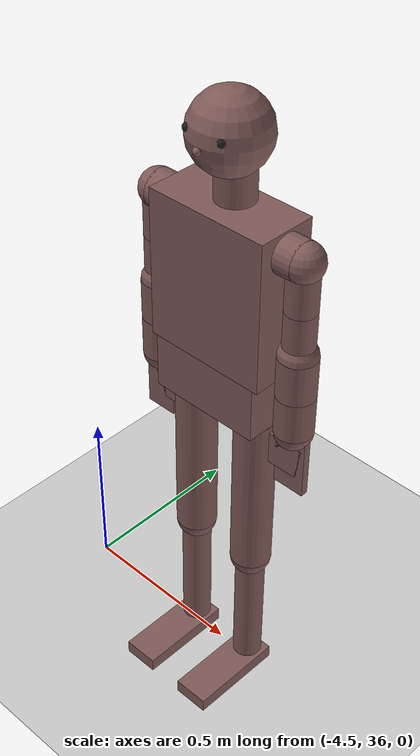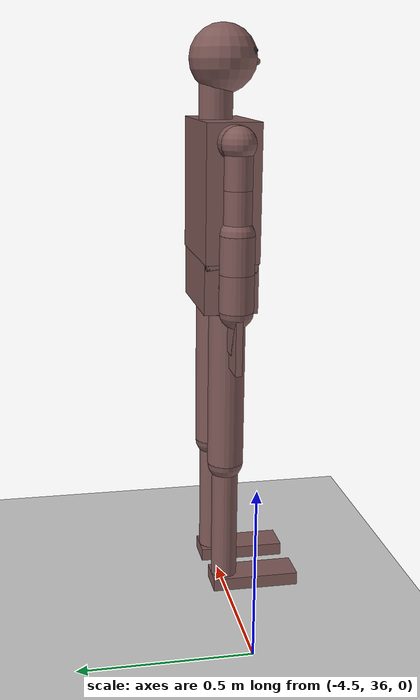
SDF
<sdf version="1.6">
 <world name="default">
  <model name="ground_plane">
   <static>1</static>
   <link name="link">
    <collision name="collision">
     <geometry><plane><normal>0 0 1</normal><size>100 100</size></plane></geometry>
     <surface><friction><ode><mu>100</mu><mu2>50</mu2></ode></friction></surface>
    </collision>
    <visual name="visual">
     <cast_shadows>0</cast_shadows>
     <geometry><plane><normal>0 0 1</normal><size>100 100</size></plane></geometry>
     <material>
      <script><uri>file://media/materials/scripts/gazebo.material</uri><name>Gazebo/Grey</name></script>
     </material>
    </visual>
   </link>
  </model>
  <model name="victim175_0">
   <static>1</static>
   <self_collide>1</self_collide>
   <link name="head">
    <pose>0 0 1.625 0 -0 0</pose>
    <visual name="visual">
     <geometry><sphere><radius>0.1</radius></sphere></geometry>
     <material>
      <emissive>0.5 0.355 0.345 1</emissive>
      <ambient>0.5 0.355 0.345 1</ambient>
      <diffuse>0.5 0.355 0.345 1</diffuse>
      <specular>0 0 0 0</specular>
     </material>
    </visual>
    <collision name="collision"><geometry><sphere><radius>0.1</radius></sphere></geometry></collision>
    <visual name="visual_nose">
     <pose>0 -0.1 -0.01 0 -0 0</pose>
     <geometry><sphere><radius>0.01</radius></sphere></geometry>
     <material>
      <emissive>0.5 0.355 0.345 1</emissive>
      <ambient>0.5 0.355 0.345 1</ambient>
      <diffuse>0.5 0.355 0.345 1</diffuse>
      <specular>0 0 0 0</specular>
     </material>
    </visual>
    <visual name="visual_rEye">
     <pose>-0.05 -0.08 0.02 0 -0 0</pose>
     <geometry><sphere><radius>0.01</radius></sphere></geometry>
     <material>
      <script><uri>file://media/materials/scripts/gazebo.material</uri><name>Gazebo/Black</name></script>
     </material>
    </visual>
    <visual name="visual_lEye">
     <pose>0.05 -0.08 0.02 0 -0 0</pose>
     <geometry><sphere><radius>0.01</radius></sphere></geometry>
     <material>
      <script><uri>file://media/materials/scripts/gazebo.material</uri><name>Gazebo/Black</name></script>
     </material>
    </visual>
    <self_collide>1</self_collide>
   </link>
   <link name="neck">
    <pose>0 0.02 1.49 0 -0 0</pose>
    <visual name="visual">
     <geometry><cylinder><radius>0.05</radius><length>0.15</length></cylinder></geometry>
     <material>
      <emissive>0.5 0.355 0.345 1</emissive>
      <ambient>0.5 0.355 0.345 1</ambient>
      <diffuse>0.5 0.355 0.345 1</diffuse>
      <specular>0 0 0 0</specular>
     </material>
    </visual>
    <collision name="collision">
     <geometry><cylinder><radius>0.05</radius><length>0.15</length></cylinder></geometry>
    </collision>
    <self_collide>1</self_collide>
   </link>
   <joint name="neck_head" type="revolute">
    <pose>0 0.02 -0.075 0 -0 0</pose>
    <child>head</child>
    <parent>neck</parent>
    <axis>
     <xyz>0 0 -1</xyz>
     <limit><lower>-1.7</lower><upper>1.7</upper></limit>
     <dynamics>
      <friction>0.01</friction>
      <spring_reference>0</spring_reference>
      <spring_stiffness>0</spring_stiffness>
     </dynamics>
     <use_parent_model_frame>0</use_parent_model_frame>
    </axis>
   </joint>
   <link name="body">
    <pose>0 0 1.255 0 -0 0</pose>
    <visual name="visual">
     <geometry><box><size>0.34 0.16 0.4</size></box></geometry>
     <material>
      <emissive>0.5 0.355 0.345 1</emissive>
      <ambient>0.5 0.355 0.345 1</ambient>
      <diffuse>0.5 0.355 0.345 1</diffuse>
      <specular>0 0 0 0</specular>
     </material>
    </visual>
    <collision name="collision"><geometry><box><size>0.34 0.16 0.4</size></box></geometry></collision>
    <self_collide>1</self_collide>
   </link>
   <joint name="body_neck" type="revolute">
    <pose>0 0.06 -0.075 0 -0 0</pose>
    <child>neck</child>
    <parent>body</parent>
    <axis>
     <xyz>1 0 0</xyz>
     <limit><lower>-0.2</lower><upper>1</upper></limit>
     <dynamics>
      <friction>0.01</friction>
      <spring_reference>0</spring_reference>
      <spring_stiffness>0</spring_stiffness>
     </dynamics>
     <use_parent_model_frame>0</use_parent_model_frame>
    </axis>
   </joint>
   <link name="waist">
    <pose>0 0 1.005 0 -0 0</pose>
    <visual name="visual">
     <pose>0 0 -0.025 0 -0 0</pose>
     <geometry><box><size>0.31 0.16 0.15</size></box></geometry>
     <material>
      <emissive>0.5 0.355 0.345 1</emissive>
      <ambient>0.5 0.355 0.345 1</ambient>
      <diffuse>0.5 0.355 0.345 1</diffuse>
      <specular>0 0 0 0</specular>
     </material>
    </visual>
    <collision name="collision"><geometry><box><size>0.31 0.16 0.1</size></box></geometry></collision>
    <visual name="visual2">
     <pose>0 0 0.05 3.14159 1.57079 3.14159</pose>
     <geometry><cylinder><radius>0.08</radius><length>0.31</length></cylinder></geometry>
     <material>
      <emissive>0.5 0.355 0.345 1</emissive>
      <ambient>0.5 0.355 0.345 1</ambient>
      <diffuse>0.5 0.355 0.345 1</diffuse>
      <specular>0 0 0 0</specular>
     </material>
    </visual>
    <collision name="collision2">
     <pose>0 0 0.05 3.14159 1.57079 3.14159</pose>
     <geometry><cylinder><radius>0.08</radius><length>0.31</length></cylinder></geometry>
    </collision>
    <self_collide>1</self_collide>
   </link>
   <joint name="body_waist" type="revolute">
    <pose>0 0 0.05 0 -0 0</pose>
    <child>waist</child>
    <parent>body</parent>
    <axis>
     <xyz>-1 0 0</xyz>
     <limit><lower>0</lower><upper>0</upper></limit>
     <dynamics>
      <friction>0.01</friction>
      <spring_reference>0</spring_reference>
      <spring_stiffness>0</spring_stiffness>
     </dynamics>
     <use_parent_model_frame>0</use_parent_model_frame>
    </axis>
   </joint>
   <link name="rHand">
    <pose>-0.22 0 0.84 0 -0 0</pose>
    <visual name="visual">
     <geometry><box><size>0.09 0.02 0.18</size></box></geometry>
     <material>
      <emissive>0.5 0.355 0.345 1</emissive>
      <ambient>0.5 0.355 0.345 1</ambient>
      <diffuse>0.5 0.355 0.345 1</diffuse>
      <specular>0 0 0 0</specular>
     </material>
    </visual>
    <collision name="collision"><geometry><box><size>0.09 0.02 0.18</size></box></geometry></collision>
    <visual name="visual2">
     <pose>0.02 0 0 0 -0 0</pose>
     <geometry><box><size>0.12 0.02 0.09</size></box></geometry>
     <material>
      <emissive>0.5 0.355 0.345 1</emissive>
      <ambient>0.5 0.355 0.345 1</ambient>
      <diffuse>0.5 0.355 0.345 1</diffuse>
      <specular>0 0 0 0</specular>
     </material>
    </visual>
    <collision name="collision2">
     <pose>0.02 0 0 0 -0 0</pose>
     <geometry><box><size>0.12 0.02 0.09</size></box></geometry>
    </collision>
    <self_collide>1</self_collide>
   </link>
   <link name="lHand">
    <pose>0.22 0 0.84 0 -0 0</pose>
    <visual name="visual">
     <geometry><box><size>0.09 0.02 0.18</size></box></geometry>
     <material>
      <emissive>0.5 0.355 0.345 1</emissive>
      <ambient>0.5 0.355 0.345 1</ambient>
      <diffuse>0.5 0.355 0.345 1</diffuse>
      <specular>0 0 0 0</specular>
     </material>
    </visual>
    <collision name="collision"><geometry><box><size>0.09 0.02 0.18</size></box></geometry></collision>
    <visual name="visual2">
     <pose>-0.02 0 0 0 -0 0</pose>
     <geometry><box><size>0.12 0.02 0.09</size></box></geometry>
     <material>
      <emissive>0.5 0.355 0.345 1</emissive>
      <ambient>0.5 0.355 0.345 1</ambient>
      <diffuse>0.5 0.355 0.345 1</diffuse>
      <specular>0 0 0 0</specular>
     </material>
    </visual>
    <collision name="collision2">
     <pose>-0.02 0 0 0 -0 0</pose>
     <geometry><box><size>0.12 0.02 0.09</size></box></geometry>
    </collision>
    <self_collide>1</self_collide>
   </link>
   <link name="rFoot">
    <pose>-0.1 -0.095 0.02 0 -0 0</pose>
    <visual name="visual">
     <geometry><box><size>0.1 0.27 0.04</size></box></geometry>
     <material>
      <emissive>0.5 0.355 0.345 1</emissive>
      <ambient>0.5 0.355 0.345 1</ambient>
      <diffuse>0.5 0.355 0.345 1</diffuse>
      <specular>0 0 0 0</specular>
     </material>
    </visual>
    <collision name="collision"><geometry><box><size>0.1 0.27 0.04</size></box></geometry></collision>
    <self_collide>1</self_collide>
   </link>
   <link name="lFoot">
    <pose>0.1 -0.095 0.02 0 -0 0</pose>
    <visual name="visual">
     <geometry><box><size>0.1 0.27 0.04</size></box></geometry>
     <material>
      <emissive>0.5 0.355 0.345 1</emissive>
      <ambient>0.5 0.355 0.345 1</ambient>
      <diffuse>0.5 0.355 0.345 1</diffuse>
      <specular>0 0 0 0</specular>
     </material>
    </visual>
    <collision name="collision"><geometry><box><size>0.1 0.27 0.04</size></box></geometry></collision>
    <self_collide>1</self_collide>
   </link>
   <link name="rLeg2">
    <pose>-0.1 0 0.23 0 -0 0</pose>
    <visual name="visual">
     <geometry><cylinder><radius>0.04</radius><length>0.38</length></cylinder></geometry>
     <material>
      <emissive>0.5 0.355 0.345 1</emissive>
      <ambient>0.5 0.355 0.345 1</ambient>
      <diffuse>0.5 0.355 0.345 1</diffuse>
      <specular>0 0 0 0</specular>
     </material>
    </visual>
    <collision name="collision">
     <geometry><cylinder><radius>0.04</radius><length>0.38</length></cylinder></geometry>
    </collision>
    <visual name="visual2">
     <pose>0 0 -0.19 0 -0 0</pose>
     <geometry><sphere><radius>0.04</radius></sphere></geometry>
     <material>
      <emissive>0.5 0.355 0.345 1</emissive>
      <ambient>0.5 0.355 0.345 1</ambient>
      <diffuse>0.5 0.355 0.345 1</diffuse>
      <specular>0 0 0 0</specular>
     </material>
    </visual>
    <collision name="collision2">
     <pose>0 0 -0.19 0 -0 0</pose>
     <geometry><sphere><radius>0.04</radius></sphere></geometry>
    </collision>
    <self_collide>1</self_collide>
   </link>
   <link name="lLeg2">
    <pose>0.1 0 0.23 0 -0 0</pose>
    <visual name="visual">
     <geometry><cylinder><radius>0.04</radius><length>0.38</length></cylinder></geometry>
     <material>
      <emissive>0.5 0.355 0.345 1</emissive>
      <ambient>0.5 0.355 0.345 1</ambient>
      <diffuse>0.5 0.355 0.345 1</diffuse>
      <specular>0 0 0 0</specular>
     </material>
    </visual>
    <collision name="collision">
     <geometry><cylinder><radius>0.04</radius><length>0.38</length></cylinder></geometry>
    </collision>
    <visual name="visual2">
     <pose>0 0 -0.19 0 -0 0</pose>
     <geometry><sphere><radius>0.04</radius></sphere></geometry>
     <material>
      <emissive>0.5 0.355 0.345 1</emissive>
      <ambient>0.5 0.355 0.345 1</ambient>
      <diffuse>0.5 0.355 0.345 1</diffuse>
      <specular>0 0 0 0</specular>
     </material>
    </visual>
    <collision name="collision2">
     <pose>0 0 -0.19 0 -0 0</pose>
     <geometry><sphere><radius>0.04</radius></sphere></geometry>
    </collision>
    <self_collide>1</self_collide>
   </link>
   <joint name="rLeg2_rFoot" type="revolute">
    <pose>0 0.095 0.02 0 -0 0</pose>
    <child>rFoot</child>
    <parent>rLeg2</parent>
    <axis>
     <xyz>1 0 0</xyz>
     <limit><lower>0</lower><upper>0</upper></limit>
     <dynamics>
      <friction>0.01</friction>
      <spring_reference>0</spring_reference>
      <spring_stiffness>0</spring_stiffness>
     </dynamics>
     <use_parent_model_frame>0</use_parent_model_frame>
    </axis>
   </joint>
   <joint name="lLeg2_lFoot" type="revolute">
    <pose>0 0.095 0.02 0 -0 0</pose>
    <child>lFoot</child>
    <parent>lLeg2</parent>
    <axis>
     <xyz>1 0 0</xyz>
     <limit><lower>0</lower><upper>0</upper></limit>
     <dynamics>
      <friction>0.01</friction>
      <spring_reference>0</spring_reference>
      <spring_stiffness>0</spring_stiffness>
     </dynamics>
     <use_parent_model_frame>0</use_parent_model_frame>
    </axis>
   </joint>
   <link name="rLeg1">
    <pose>-0.1 0 0.66 0 -0 0</pose>
    <visual name="visual">
     <geometry><cylinder><radius>0.055</radius><length>0.48</length></cylinder></geometry>
     <material>
      <emissive>0.5 0.355 0.345 1</emissive>
      <ambient>0.5 0.355 0.345 1</ambient>
      <diffuse>0.5 0.355 0.345 1</diffuse>
      <specular>0 0 0 0</specular>
     </material>
    </visual>
    <collision name="collision">
     <geometry><cylinder><radius>0.055</radius><length>0.48</length></cylinder></geometry>
    </collision>
    <visual name="visual2">
     <pose>0 0 -0.24 0 -0 0</pose>
     <geometry><sphere><radius>0.055</radius></sphere></geometry>
     <material>
      <emissive>0.5 0.355 0.345 1</emissive>
      <ambient>0.5 0.355 0.345 1</ambient>
      <diffuse>0.5 0.355 0.345 1</diffuse>
      <specular>0 0 0 0</specular>
     </material>
    </visual>
    <collision name="collision2">
     <pose>0 0 -0.24 0 -0 0</pose>
     <geometry><sphere><radius>0.055</radius></sphere></geometry>
    </collision>
    <visual name="visual3">
     <pose>0 0 0.24 0 -0 0</pose>
     <geometry><sphere><radius>0.055</radius></sphere></geometry>
     <material>
      <emissive>0.5 0.355 0.345 1</emissive>
      <ambient>0.5 0.355 0.345 1</ambient>
      <diffuse>0.5 0.355 0.345 1</diffuse>
      <specular>0 0 0 0</specular>
     </material>
    </visual>
    <collision name="collision3">
     <pose>0 0 0.24 0 -0 0</pose>
     <geometry><sphere><radius>0.055</radius></sphere></geometry>
    </collision>
    <self_collide>1</self_collide>
   </link>
   <link name="lLeg1">
    <pose>0.1 0 0.66 0 -0 0</pose>
    <visual name="visual">
     <geometry><cylinder><radius>0.055</radius><length>0.48</length></cylinder></geometry>
     <material>
      <emissive>0.5 0.355 0.345 1</emissive>
      <ambient>0.5 0.355 0.345 1</ambient>
      <diffuse>0.5 0.355 0.345 1</diffuse>
      <specular>0 0 0 0</specular>
     </material>
    </visual>
    <collision name="collision">
     <geometry><cylinder><radius>0.055</radius><length>0.48</length></cylinder></geometry>
    </collision>
    <visual name="visual2">
     <pose>0 0 -0.24 0 -0 0</pose>
     <geometry><sphere><radius>0.055</radius></sphere></geometry>
     <material>
      <emissive>0.5 0.355 0.345 1</emissive>
      <ambient>0.5 0.355 0.345 1</ambient>
      <diffuse>0.5 0.355 0.345 1</diffuse>
      <specular>0 0 0 0</specular>
     </material>
    </visual>
    <collision name="collision2">
     <pose>0 0 -0.24 0 -0 0</pose>
     <geometry><sphere><radius>0.055</radius></sphere></geometry>
    </collision>
    <visual name="visual3">
     <pose>0 0 0.24 0 -0 0</pose>
     <geometry><sphere><radius>0.055</radius></sphere></geometry>
     <material>
      <emissive>0.5 0.355 0.345 1</emissive>
      <ambient>0.5 0.355 0.345 1</ambient>
      <diffuse>0.5 0.355 0.345 1</diffuse>
      <specular>0 0 0 0</specular>
     </material>
    </visual>
    <collision name="collision3">
     <pose>0 0 0.24 0 -0 0</pose>
     <geometry><sphere><radius>0.055</radius></sphere></geometry>
    </collision>
    <self_collide>1</self_collide>
   </link>
   <joint name="rLeg1_rLeg2" type="revolute">
    <pose>0 0 0.19 0 -0 0</pose>
    <child>rLeg2</child>
    <parent>rLeg1</parent>
    <axis>
     <xyz>1 0 0</xyz>
     <limit><lower>0</lower><upper>0</upper></limit>
     <dynamics>
      <friction>0.01</friction>
      <spring_reference>0</spring_reference>
      <spring_stiffness>0</spring_stiffness>
     </dynamics>
     <use_parent_model_frame>0</use_parent_model_frame>
    </axis>
   </joint>
   <joint name="lLeg1_lLeg2" type="revolute">
    <pose>0 0 0.19 0 -0 0</pose>
    <child>lLeg2</child>
    <parent>lLeg1</parent>
    <axis>
     <xyz>1 0 0</xyz>
     <limit><lower>0</lower><upper>0</upper></limit>
     <dynamics>
      <friction>0.01</friction>
      <spring_reference>0</spring_reference>
      <spring_stiffness>0</spring_stiffness>
     </dynamics>
     <use_parent_model_frame>0</use_parent_model_frame>
    </axis>
   </joint>
   <link name="rButt">
    <pose>-0.1 0 0.9275 0 -0 0</pose>
    <visual name="visual">
     <geometry><cylinder><radius>0.055</radius><length>0.055</length></cylinder></geometry>
     <material>
      <emissive>0.5 0.355 0.345 1</emissive>
      <ambient>0.5 0.355 0.345 1</ambient>
      <diffuse>0.5 0.355 0.345 1</diffuse>
      <specular>0 0 0 0</specular>
     </material>
    </visual>
    <collision name="collision">
     <geometry><cylinder><radius>0.055</radius><length>0.055</length></cylinder></geometry>
    </collision>
    <self_collide>1</self_collide>
   </link>
   <link name="lButt">
    <pose>0.1 0 0.9275 0 -0 0</pose>
    <visual name="visual">
     <geometry><cylinder><radius>0.055</radius><length>0.055</length></cylinder></geometry>
     <material>
      <emissive>0.5 0.355 0.345 1</emissive>
      <ambient>0.5 0.355 0.345 1</ambient>
      <diffuse>0.5 0.355 0.345 1</diffuse>
      <specular>0 0 0 0</specular>
     </material>
    </visual>
    <collision name="collision">
     <geometry><cylinder><radius>0.055</radius><length>0.055</length></cylinder></geometry>
    </collision>
    <self_collide>1</self_collide>
   </link>
   <joint name="rButt_rLeg1" type="revolute">
    <pose>0 0 0.24 0 -0 0</pose>
    <child>rLeg1</child>
    <parent>rButt</parent>
    <axis>
     <xyz>1 0 0</xyz>
     <limit><lower>0</lower><upper>0</upper></limit>
     <dynamics>
      <friction>0.01</friction>
      <spring_reference>0</spring_reference>
      <spring_stiffness>0</spring_stiffness>
     </dynamics>
     <use_parent_model_frame>0</use_parent_model_frame>
    </axis>
   </joint>
   <joint name="lButt_lLeg1" type="revolute">
    <pose>0 0 0.24 0 -0 0</pose>
    <child>lLeg1</child>
    <parent>lButt</parent>
    <axis>
     <xyz>1 0 0</xyz>
     <limit><lower>0</lower><upper>0</upper></limit>
     <dynamics>
      <friction>0.01</friction>
      <spring_reference>0</spring_reference>
      <spring_stiffness>0</spring_stiffness>
     </dynamics>
     <use_parent_model_frame>0</use_parent_model_frame>
    </axis>
   </joint>
   <joint name="waist_rButt" type="revolute">
    <child>rButt</child>
    <parent>waist</parent>
    <axis>
     <xyz>0 0 -1</xyz>
     <limit><lower>-1</lower><upper>1</upper></limit>
     <dynamics>
      <friction>0.01</friction>
      <spring_reference>0</spring_reference>
      <spring_stiffness>0</spring_stiffness>
     </dynamics>
     <use_parent_model_frame>0</use_parent_model_frame>
    </axis>
   </joint>
   <joint name="waist_lButt" type="revolute">
    <child>lButt</child>
    <parent>waist</parent>
    <axis>
     <xyz>0 0 1</xyz>
     <limit><lower>-1</lower><upper>1</upper></limit>
     <dynamics>
      <friction>0.01</friction>
      <spring_reference>0</spring_reference>
      <spring_stiffness>0</spring_stiffness>
     </dynamics>
     <use_parent_model_frame>0</use_parent_model_frame>
    </axis>
   </joint>
   <link name="rShoulder">
    <pose>-0.195 0 1.4 0 -0 0</pose>
    <visual name="visual">
     <pose>0 0 0 3.14159 1.57079 3.14159</pose>
     <geometry><cylinder><radius>0.05</radius><length>0.05</length></cylinder></geometry>
     <material>
      <emissive>0.5 0.355 0.345 1</emissive>
      <ambient>0.5 0.355 0.345 1</ambient>
      <diffuse>0.5 0.355 0.345 1</diffuse>
      <specular>0 0 0 0</specular>
     </material>
    </visual>
    <collision name="collision">
     <pose>0 0 0 3.14159 1.57079 3.14159</pose>
     <geometry><cylinder><radius>0.05</radius><length>0.05</length></cylinder></geometry>
    </collision>
    <self_collide>1</self_collide>
   </link>
   <link name="lShoulder">
    <pose>0.195 0 1.4 0 -0 0</pose>
    <visual name="visual">
     <pose>0 0 0 3.14159 1.57079 3.14159</pose>
     <geometry><cylinder><radius>0.05</radius><length>0.05</length></cylinder></geometry>
     <material>
      <emissive>0.5 0.355 0.345 1</emissive>
      <ambient>0.5 0.355 0.345 1</ambient>
      <diffuse>0.5 0.355 0.345 1</diffuse>
      <specular>0 0 0 0</specular>
     </material>
    </visual>
    <collision name="collision">
     <pose>0 0 0 3.14159 1.57079 3.14159</pose>
     <geometry><cylinder><radius>0.05</radius><length>0.05</length></cylinder></geometry>
    </collision>
    <self_collide>1</self_collide>
   </link>
   <joint name="body_rShoulder" type="revolute">
    <child>rShoulder</child>
    <parent>body</parent>
    <axis>
     <xyz>-1 0 0</xyz>
     <limit><lower>-1.5708</lower><upper>3.2</upper></limit>
     <dynamics>
      <friction>0.01</friction>
      <spring_reference>0</spring_reference>
      <spring_stiffness>0</spring_stiffness>
     </dynamics>
     <use_parent_model_frame>0</use_parent_model_frame>
    </axis>
   </joint>
   <joint name="body_lShoulder" type="revolute">
    <child>lShoulder</child>
    <parent>body</parent>
    <axis>
     <xyz>1 0 0</xyz>
     <limit><lower>-1.5708</lower><upper>3.2</upper></limit>
     <dynamics>
      <friction>0.01</friction>
      <spring_reference>0</spring_reference>
      <spring_stiffness>0</spring_stiffness>
     </dynamics>
     <use_parent_model_frame>0</use_parent_model_frame>
    </axis>
   </joint>
   <link name="rArm1U">
    <pose>-0.22 0 1.3375 0 -0 0</pose>
    <visual name="visual">
     <geometry><cylinder><radius>0.04</radius><length>0.125</length></cylinder></geometry>
     <material>
      <emissive>0.5 0.355 0.345 1</emissive>
      <ambient>0.5 0.355 0.345 1</ambient>
      <diffuse>0.5 0.355 0.345 1</diffuse>
      <specular>0 0 0 0</specular>
     </material>
    </visual>
    <collision name="collision">
     <geometry><cylinder><radius>0.04</radius><length>0.125</length></cylinder></geometry>
    </collision>
    <visual name="visual2">
     <pose>0 0 0.0625 0 -0 0</pose>
     <geometry><sphere><radius>0.05</radius></sphere></geometry>
     <material>
      <emissive>0.5 0.355 0.345 1</emissive>
      <ambient>0.5 0.355 0.345 1</ambient>
      <diffuse>0.5 0.355 0.345 1</diffuse>
      <specular>0 0 0 0</specular>
     </material>
    </visual>
    <collision name="collision2">
     <pose>0 0 0.0625 0 -0 0</pose>
     <geometry><sphere><radius>0.05</radius></sphere></geometry>
    </collision>
    <self_collide>1</self_collide>
   </link>
   <link name="rArm1L">
    <pose>-0.22 0 1.2125 0 -0 0</pose>
    <visual name="visual">
     <geometry><cylinder><radius>0.04</radius><length>0.125</length></cylinder></geometry>
     <material>
      <emissive>0.5 0.355 0.345 1</emissive>
      <ambient>0.5 0.355 0.345 1</ambient>
      <diffuse>0.5 0.355 0.345 1</diffuse>
      <specular>0 0 0 0</specular>
     </material>
    </visual>
    <collision name="collision">
     <geometry><cylinder><radius>0.04</radius><length>0.125</length></cylinder></geometry>
    </collision>
    <visual name="visual2">
     <pose>0 0 -0.0625 0 -0 0</pose>
     <geometry><sphere><radius>0.05</radius></sphere></geometry>
     <material>
      <emissive>0.5 0.355 0.345 1</emissive>
      <ambient>0.5 0.355 0.345 1</ambient>
      <diffuse>0.5 0.355 0.345 1</diffuse>
      <specular>0 0 0 0</specular>
     </material>
    </visual>
    <collision name="collision2">
     <pose>0 0 -0.0625 0 -0 0</pose>
     <geometry><sphere><radius>0.05</radius></sphere></geometry>
    </collision>
    <self_collide>1</self_collide>
   </link>
   <joint name="rArm1U_rArm1L" type="revolute">
    <pose>0 0 0.0625 0 -0 0</pose>
    <child>rArm1L</child>
    <parent>rArm1U</parent>
    <axis>
     <xyz>0 0 -1</xyz>
     <limit><lower>-1.5708</lower><upper>1.5708</upper></limit>
     <dynamics>
      <friction>0.01</friction>
      <spring_reference>0</spring_reference>
      <spring_stiffness>0</spring_stiffness>
     </dynamics>
     <use_parent_model_frame>0</use_parent_model_frame>
    </axis>
   </joint>
   <link name="lArm1U">
    <pose>0.22 0 1.3375 0 -0 0</pose>
    <visual name="visual">
     <geometry><cylinder><radius>0.04</radius><length>0.125</length></cylinder></geometry>
     <material>
      <emissive>0.5 0.355 0.345 1</emissive>
      <ambient>0.5 0.355 0.345 1</ambient>
      <diffuse>0.5 0.355 0.345 1</diffuse>
      <specular>0 0 0 0</specular>
     </material>
    </visual>
    <collision name="collision">
     <geometry><cylinder><radius>0.04</radius><length>0.125</length></cylinder></geometry>
    </collision>
    <visual name="visual2">
     <pose>0 0 0.0625 0 -0 0</pose>
     <geometry><sphere><radius>0.05</radius></sphere></geometry>
     <material>
      <emissive>0.5 0.355 0.345 1</emissive>
      <ambient>0.5 0.355 0.345 1</ambient>
      <diffuse>0.5 0.355 0.345 1</diffuse>
      <specular>0 0 0 0</specular>
     </material>
    </visual>
    <collision name="collision2">
     <pose>0 0 0.0625 0 -0 0</pose>
     <geometry><sphere><radius>0.05</radius></sphere></geometry>
    </collision>
    <self_collide>1</self_collide>
   </link>
   <link name="lArm1L">
    <pose>0.22 0 1.2125 0 -0 0</pose>
    <visual name="visual">
     <geometry><cylinder><radius>0.04</radius><length>0.125</length></cylinder></geometry>
     <material>
      <emissive>0.5 0.355 0.345 1</emissive>
      <ambient>0.5 0.355 0.345 1</ambient>
      <diffuse>0.5 0.355 0.345 1</diffuse>
      <specular>0 0 0 0</specular>
     </material>
    </visual>
    <collision name="collision">
     <geometry><cylinder><radius>0.04</radius><length>0.125</length></cylinder></geometry>
    </collision>
    <visual name="visual2">
     <pose>0 0 -0.0625 0 -0 0</pose>
     <geometry><sphere><radius>0.05</radius></sphere></geometry>
     <material>
      <emissive>0.5 0.355 0.345 1</emissive>
      <ambient>0.5 0.355 0.345 1</ambient>
      <diffuse>0.5 0.355 0.345 1</diffuse>
      <specular>0 0 0 0</specular>
     </material>
    </visual>
    <collision name="collision2">
     <pose>0 0 -0.0625 0 -0 0</pose>
     <geometry><sphere><radius>0.05</radius></sphere></geometry>
    </collision>
    <self_collide>1</self_collide>
   </link>
   <joint name="lArm1U_lArm1L" type="revolute">
    <pose>0 0 0.0625 0 -0 0</pose>
    <child>lArm1L</child>
    <parent>lArm1U</parent>
    <axis>
     <xyz>0 0 1</xyz>
     <limit><lower>-1.5708</lower><upper>1.5708</upper></limit>
     <dynamics>
      <friction>0.01</friction>
      <spring_reference>0</spring_reference>
      <spring_stiffness>0</spring_stiffness>
     </dynamics>
     <use_parent_model_frame>0</use_parent_model_frame>
    </axis>
   </joint>
   <joint name="rShoulder_rArm1" type="revolute">
    <pose>0 0 0.0625 0 -0 0</pose>
    <child>rArm1U</child>
    <parent>rShoulder</parent>
    <axis>
     <xyz>0 -1 0</xyz>
     <limit><lower>-1.5708</lower><upper>3.2</upper></limit>
     <dynamics>
      <friction>0.01</friction>
      <spring_reference>0</spring_reference>
      <spring_stiffness>0</spring_stiffness>
     </dynamics>
     <use_parent_model_frame>0</use_parent_model_frame>
    </axis>
   </joint>
   <joint name="lShoulder_lArm1" type="revolute">
    <pose>0 0 0.0625 0 -0 0</pose>
    <child>lArm1U</child>
    <parent>lShoulder</parent>
    <axis>
     <xyz>0 1 0</xyz>
     <limit><lower>-1.5708</lower><upper>3.2</upper></limit>
     <dynamics>
      <friction>0.01</friction>
      <spring_reference>0</spring_reference>
      <spring_stiffness>0</spring_stiffness>
     </dynamics>
     <use_parent_model_frame>0</use_parent_model_frame>
    </axis>
   </joint>
   <link name="rArm2U">
    <pose>-0.22 0 1.095 0 -0 0</pose>
    <visual name="visual">
     <geometry><cylinder><radius>0.05</radius><length>0.11</length></cylinder></geometry>
     <material>
      <emissive>0.5 0.355 0.345 1</emissive>
      <ambient>0.5 0.355 0.345 1</ambient>
      <diffuse>0.5 0.355 0.345 1</diffuse>
      <specular>0 0 0 0</specular>
     </material>
    </visual>
    <collision name="collision">
     <geometry><cylinder><radius>0.05</radius><length>0.11</length></cylinder></geometry>
    </collision>
    <self_collide>1</self_collide>
   </link>
   <link name="rArm2L">
    <pose>-0.22 0 0.985 0 -0 0</pose>
    <visual name="visual">
     <geometry><cylinder><radius>0.05</radius><length>0.11</length></cylinder></geometry>
     <material>
      <emissive>0.5 0.355 0.345 1</emissive>
      <ambient>0.5 0.355 0.345 1</ambient>
      <diffuse>0.5 0.355 0.345 1</diffuse>
      <specular>0 0 0 0</specular>
     </material>
    </visual>
    <collision name="collision">
     <geometry><cylinder><radius>0.05</radius><length>0.11</length></cylinder></geometry>
    </collision>
    <visual name="visual2">
     <pose>0 0 -0.055 0 -0 0</pose>
     <geometry><sphere><radius>0.05</radius></sphere></geometry>
     <material>
      <emissive>0.5 0.355 0.345 1</emissive>
      <ambient>0.5 0.355 0.345 1</ambient>
      <diffuse>0.5 0.355 0.345 1</diffuse>
      <specular>0 0 0 0</specular>
     </material>
    </visual>
    <collision name="collision2">
     <pose>0 0 -0.055 0 -0 0</pose>
     <geometry><sphere><radius>0.05</radius></sphere></geometry>
    </collision>
    <self_collide>1</self_collide>
   </link>
   <joint name="rArm2U_rArm2L" type="revolute">
    <pose>0 0 0.055 0 -0 0</pose>
    <child>rArm2L</child>
    <parent>rArm2U</parent>
    <axis>
     <xyz>0 0 -1</xyz>
     <limit><lower>-1.5708</lower><upper>1.5708</upper></limit>
     <dynamics>
      <friction>0.01</friction>
      <spring_reference>0</spring_reference>
      <spring_stiffness>0</spring_stiffness>
     </dynamics>
     <use_parent_model_frame>0</use_parent_model_frame>
    </axis>
   </joint>
   <link name="lArm2U">
    <pose>0.22 0 1.095 0 -0 0</pose>
    <visual name="visual">
     <geometry><cylinder><radius>0.05</radius><length>0.11</length></cylinder></geometry>
     <material>
      <emissive>0.5 0.355 0.345 1</emissive>
      <ambient>0.5 0.355 0.345 1</ambient>
      <diffuse>0.5 0.355 0.345 1</diffuse>
      <specular>0 0 0 0</specular>
     </material>
    </visual>
    <collision name="collision">
     <geometry><cylinder><radius>0.05</radius><length>0.11</length></cylinder></geometry>
    </collision>
    <self_collide>1</self_collide>
   </link>
   <link name="lArm2L">
    <pose>0.22 0 0.985 0 -0 0</pose>
    <visual name="visual">
     <geometry><cylinder><radius>0.05</radius><length>0.11</length></cylinder></geometry>
     <material>
      <emissive>0.5 0.355 0.345 1</emissive>
      <ambient>0.5 0.355 0.345 1</ambient>
      <diffuse>0.5 0.355 0.345 1</diffuse>
      <specular>0 0 0 0</specular>
     </material>
    </visual>
    <collision name="collision">
     <geometry><cylinder><radius>0.05</radius><length>0.11</length></cylinder></geometry>
    </collision>
    <visual name="visual2">
     <pose>0 0 -0.055 0 -0 0</pose>
     <geometry><sphere><radius>0.05</radius></sphere></geometry>
     <material>
      <emissive>0.5 0.355 0.345 1</emissive>
      <ambient>0.5 0.355 0.345 1</ambient>
      <diffuse>0.5 0.355 0.345 1</diffuse>
      <specular>0 0 0 0</specular>
     </material>
    </visual>
    <collision name="collision2">
     <pose>0 0 -0.055 0 -0 0</pose>
     <geometry><sphere><radius>0.05</radius></sphere></geometry>
    </collision>
    <self_collide>1</self_collide>
   </link>
   <joint name="lArm2U_lArm2L" type="revolute">
    <pose>0 0 0.055 0 -0 0</pose>
    <child>lArm2L</child>
    <parent>lArm2U</parent>
    <axis>
     <xyz>0 0 1</xyz>
     <limit><lower>-1.5708</lower><upper>1.5708</upper></limit>
     <dynamics>
      <friction>0.01</friction>
      <spring_reference>0</spring_reference>
      <spring_stiffness>0</spring_stiffness>
     </dynamics>
     <use_parent_model_frame>0</use_parent_model_frame>
    </axis>
   </joint>
   <joint name="rArm1_rArm2" type="revolute">
    <pose>0 0 0.055 0 -0 0</pose>
    <child>rArm2U</child>
    <parent>rArm1L</parent>
    <axis>
     <xyz>-1 0 0</xyz>
     <limit><lower>0</lower><upper>2.8</upper></limit>
     <dynamics>
      <friction>0.01</friction>
      <spring_reference>0</spring_reference>
      <spring_stiffness>0</spring_stiffness>
     </dynamics>
     <use_parent_model_frame>0</use_parent_model_frame>
    </axis>
   </joint>
   <joint name="lArm1_lArm2" type="revolute">
    <pose>0 0 0.055 0 -0 0</pose>
    <child>lArm2U</child>
    <parent>lArm1L</parent>
    <axis>
     <xyz>-1 0 0</xyz>
     <limit><lower>0</lower><upper>2.8</upper></limit>
     <dynamics>
      <friction>0.01</friction>
      <spring_reference>0</spring_reference>
      <spring_stiffness>0</spring_stiffness>
     </dynamics>
     <use_parent_model_frame>0</use_parent_model_frame>
    </axis>
   </joint>
   <joint name="rArm2_rHand" type="revolute">
    <pose>0 0 0.09 0 -0 0</pose>
    <child>rHand</child>
    <parent>rArm2L</parent>
    <axis>
     <xyz>-1 0 0</xyz>
     <limit><lower>-1.57</lower><upper>1.4</upper></limit>
     <dynamics>
      <friction>0.01</friction>
      <spring_reference>0</spring_reference>
      <spring_stiffness>0</spring_stiffness>
     </dynamics>
     <use_parent_model_frame>0</use_parent_model_frame>
    </axis>
   </joint>
   <joint name="lArm2_lHand" type="revolute">
    <pose>0 0 0.09 0 -0 0</pose>
    <child>lHand</child>
    <parent>lArm2L</parent>
    <axis>
     <xyz>-1 0 0</xyz>
     <limit><lower>-1.57</lower><upper>1.4</upper></limit>
     <dynamics>
      <friction>0.01</friction>
      <spring_reference>0</spring_reference>
      <spring_stiffness>0</spring_stiffness>
     </dynamics>
     <use_parent_model_frame>0</use_parent_model_frame>
    </axis>
   </joint>
   <joint name="world_rFoot" type="revolute">
    <child>rFoot</child>
    <parent>world</parent>
    <axis>
     <xyz>0 0 1</xyz>
     <limit><lower>0</lower><upper>0</upper></limit>
     <use_parent_model_frame>0</use_parent_model_frame>
     <dynamics><spring_reference>0</spring_reference><spring_stiffness>0</spring_stiffness></dynamics>
    </axis>
   </joint>
   <joint name="world_lFoot" type="revolute">
    <child>lFoot</child>
    <parent>world</parent>
    <axis>
     <xyz>0 0 1</xyz>
     <limit><lower>0</lower><upper>0</upper></limit>
     <use_parent_model_frame>0</use_parent_model_frame>
     <dynamics><spring_reference>0</spring_reference><spring_stiffness>0</spring_stiffness></dynamics>
    </axis>
   </joint>
   <pose>-4 36 0 0 -0 0</pose>
  </model>
 </world>
</sdf>
